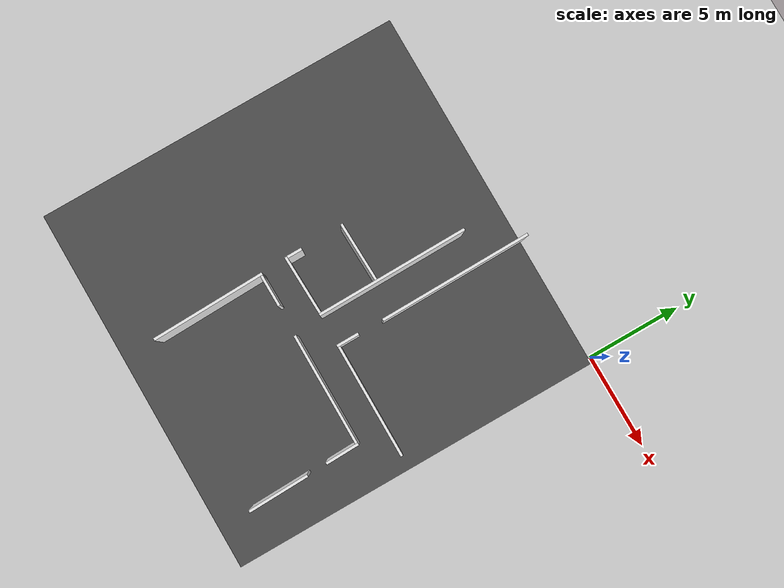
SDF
<sdf version="1.6">
 <world name="default">
  <model name="ground_plane">
   <static>1</static>
   <link name="link">
    <collision name="collision">
     <geometry><plane><normal>0 0 1</normal><size>100 100</size></plane></geometry>
     <surface><friction><ode><mu>100</mu><mu2>50</mu2></ode></friction></surface>
    </collision>
    <visual name="visual">
     <cast_shadows>0</cast_shadows>
     <geometry><plane><normal>0 0 1</normal><size>100 100</size></plane></geometry>
     <material>
      <script><uri>file://media/materials/scripts/gazebo.material</uri><name>Gazebo/Grey</name></script>
     </material>
    </visual>
    <velocity_decay><linear>0</linear><angular>0</angular></velocity_decay>
   </link>
  </model>
  <model name="asphalt_plane">
   <static>1</static>
   <link name="link">
    <collision name="collision"><geometry><box><size>20 20 0.1</size></box></geometry></collision>
    <visual name="visual">
     <cast_shadows>0</cast_shadows>
     <geometry><box><size>20 20 0.1</size></box></geometry>
     <material>
      <script>
       <uri>model://asphalt_plane/materials/scripts</uri>
       <uri>model://asphalt_plane/materials/textures</uri>
       <name>vrc/asphalt</name>
      </script>
     </material>
    </visual>
   </link>
   <pose>-9.73878 -10.1135 0 0 -0 0</pose>
  </model>
  <model name="white_wall2_clone_clone">
   <link name="link">
    <inertial>
     <mass>1</mass>
     <inertia>
      <ixx>0.166667</ixx>
      <ixy>0</ixy>
      <ixz>0</ixz>
      <iyy>0.166667</iyy>
      <iyz>0</iyz>
      <izz>0.166667</izz>
     </inertia>
    </inertial>
    <visual name="visual">
     <geometry><box><size>3.22688 0.139088 2.78993</size></box></geometry>
     <material>
      <script><name>Gazebo/White</name><uri>file://media/materials/scripts/gazebo.material</uri></script>
      <shader type="vertex"><normal_map>__default__</normal_map></shader>
      <ambient>1 1 1 1</ambient>
      <diffuse>1 1 1 1</diffuse>
      <specular>0 0 0 1</specular>
      <emissive>0 0 0 1</emissive>
     </material>
    </visual>
    <collision name="collision">
     <geometry><box><size>3.22688 0.139088 2.78993</size></box></geometry>
     <surface>
      <friction>
       <ode><mu>1</mu><mu2>1</mu2><fdir1>0 0 0</fdir1><slip1>0</slip1><slip2>0</slip2></ode>
       <torsional>
        <coefficient>1</coefficient>
        <patch_radius>0</patch_radius>
        <surface_radius>0</surface_radius>
        <use_patch_radius>1</use_patch_radius>
        <ode><slip>0</slip></ode>
       </torsional>
      </friction>
      <bounce><restitution_coefficient>0</restitution_coefficient><threshold>1e+06</threshold></bounce>
      <contact>
       <collide_without_contact>0</collide_without_contact>
       <collide_without_contact_bitmask>1</collide_without_contact_bitmask>
       <collide_bitmask>1</collide_bitmask>
       <ode>
        <soft_cfm>0</soft_cfm>
        <soft_erp>0.2</soft_erp>
        <kp>1e+13</kp>
        <kd>1</kd>
        <max_vel>0.01</max_vel>
        <min_depth>0</min_depth>
       </ode>
       <bullet>
        <split_impulse>1</split_impulse>
        <split_impulse_penetration_threshold>-0.01</split_impulse_penetration_threshold>
        <soft_cfm>0</soft_cfm>
        <soft_erp>0.2</soft_erp>
        <kp>1e+13</kp>
        <kd>1</kd>
       </bullet>
      </contact>
     </surface>
    </collision>
   </link>
   <static>1</static>
   <pose>-2.06384 -16.4395 1.43995 4e-06 1e-06 1.59932</pose>
  </model>
  <model name="white_wall3_clone_clone">
   <link name="link">
    <inertial>
     <mass>1</mass>
     <inertia>
      <ixx>0.166667</ixx>
      <ixy>0</ixy>
      <ixz>0</ixz>
      <iyy>0.166667</iyy>
      <iyz>0</iyz>
      <izz>0.166667</izz>
     </inertia>
    </inertial>
    <visual name="visual">
     <geometry><box><size>1.77743 0.139088 2.78993</size></box></geometry>
     <material>
      <script><name>Gazebo/White</name><uri>file://media/materials/scripts/gazebo.material</uri></script>
      <shader type="vertex"><normal_map>__default__</normal_map></shader>
      <ambient>1 1 1 1</ambient>
      <diffuse>1 1 1 1</diffuse>
      <specular>0 0 0 1</specular>
      <emissive>0 0 0 1</emissive>
     </material>
    </visual>
    <collision name="collision">
     <geometry><box><size>1.77743 0.139088 2.78993</size></box></geometry>
     <surface>
      <friction>
       <ode><mu>1</mu><mu2>1</mu2><fdir1>0 0 0</fdir1><slip1>0</slip1><slip2>0</slip2></ode>
       <torsional>
        <coefficient>1</coefficient>
        <patch_radius>0</patch_radius>
        <surface_radius>0</surface_radius>
        <use_patch_radius>1</use_patch_radius>
        <ode><slip>0</slip></ode>
       </torsional>
      </friction>
      <bounce><restitution_coefficient>0</restitution_coefficient><threshold>1e+06</threshold></bounce>
      <contact>
       <collide_without_contact>0</collide_without_contact>
       <collide_without_contact_bitmask>1</collide_without_contact_bitmask>
       <collide_bitmask>1</collide_bitmask>
       <ode>
        <soft_cfm>0</soft_cfm>
        <soft_erp>0.2</soft_erp>
        <kp>1e+13</kp>
        <kd>1</kd>
        <max_vel>0.01</max_vel>
        <min_depth>0</min_depth>
       </ode>
       <bullet>
        <split_impulse>1</split_impulse>
        <split_impulse_penetration_threshold>-0.01</split_impulse_penetration_threshold>
        <soft_cfm>0</soft_cfm>
        <soft_erp>0.2</soft_erp>
        <kp>1e+13</kp>
        <kd>1</kd>
       </bullet>
      </contact>
     </surface>
    </collision>
   </link>
   <static>1</static>
   <pose>-2.17837 -12.9037 1.43995 4e-06 1e-06 1.59932</pose>
  </model>
  <model name="white_wall6_clone">
   <link name="link">
    <inertial>
     <mass>1</mass>
     <inertia>
      <ixx>0.166667</ixx>
      <ixy>0</ixy>
      <ixz>0</ixz>
      <iyy>0.166667</iyy>
      <iyz>0</iyz>
      <izz>0.166667</izz>
     </inertia>
    </inertial>
    <visual name="visual">
     <geometry><box><size>6.01508 0.139088 2.78993</size></box></geometry>
     <material>
      <script><name>Gazebo/White</name><uri>file://media/materials/scripts/gazebo.material</uri></script>
      <shader type="vertex"><normal_map>__default__</normal_map></shader>
      <ambient>1 1 1 1</ambient>
      <diffuse>1 1 1 1</diffuse>
      <specular>0 0 0 1</specular>
      <emissive>0 0 0 1</emissive>
     </material>
    </visual>
    <collision name="collision">
     <geometry><box><size>6.01508 0.139088 2.78993</size></box></geometry>
     <surface>
      <friction>
       <ode><mu>1</mu><mu2>1</mu2><fdir1>0 0 0</fdir1><slip1>0</slip1><slip2>0</slip2></ode>
       <torsional>
        <coefficient>1</coefficient>
        <patch_radius>0</patch_radius>
        <surface_radius>0</surface_radius>
        <use_patch_radius>1</use_patch_radius>
        <ode><slip>0</slip></ode>
       </torsional>
      </friction>
      <bounce><restitution_coefficient>0</restitution_coefficient><threshold>1e+06</threshold></bounce>
      <contact>
       <collide_without_contact>0</collide_without_contact>
       <collide_without_contact_bitmask>1</collide_without_contact_bitmask>
       <collide_bitmask>1</collide_bitmask>
       <ode>
        <soft_cfm>0</soft_cfm>
        <soft_erp>0.2</soft_erp>
        <kp>1e+13</kp>
        <kd>1</kd>
        <max_vel>0.01</max_vel>
        <min_depth>0</min_depth>
       </ode>
       <bullet>
        <split_impulse>1</split_impulse>
        <split_impulse_penetration_threshold>-0.01</split_impulse_penetration_threshold>
        <soft_cfm>0</soft_cfm>
        <soft_erp>0.2</soft_erp>
        <kp>1e+13</kp>
        <kd>1</kd>
       </bullet>
      </contact>
     </surface>
    </collision>
   </link>
   <static>1</static>
   <pose>-11.3944 -14.9604 1.43998 4e-06 1e-06 1.59932</pose>
  </model>
  <model name="white_wall3_clone_clone_0">
   <link name="link">
    <inertial>
     <mass>1</mass>
     <inertia>
      <ixx>0.166667</ixx>
      <ixy>0</ixy>
      <ixz>0</ixz>
      <iyy>0.166667</iyy>
      <iyz>0</iyz>
      <izz>0.166667</izz>
     </inertia>
    </inertial>
    <visual name="visual">
     <geometry><box><size>1.77743 0.139088 2.78993</size></box></geometry>
     <material>
      <script><name>Gazebo/White</name><uri>file://media/materials/scripts/gazebo.material</uri></script>
      <shader type="vertex"><normal_map>__default__</normal_map></shader>
      <ambient>1 1 1 1</ambient>
      <diffuse>1 1 1 1</diffuse>
      <specular>0 0 0 1</specular>
      <emissive>0 0 0 1</emissive>
     </material>
    </visual>
    <collision name="collision">
     <geometry><box><size>1.77743 0.139088 2.78993</size></box></geometry>
     <surface>
      <friction>
       <ode><mu>1</mu><mu2>1</mu2><fdir1>0 0 0</fdir1><slip1>0</slip1><slip2>0</slip2></ode>
       <torsional>
        <coefficient>1</coefficient>
        <patch_radius>0</patch_radius>
        <surface_radius>0</surface_radius>
        <use_patch_radius>1</use_patch_radius>
        <ode><slip>0</slip></ode>
       </torsional>
      </friction>
      <bounce><restitution_coefficient>0</restitution_coefficient><threshold>1e+06</threshold></bounce>
      <contact>
       <collide_without_contact>0</collide_without_contact>
       <collide_without_contact_bitmask>1</collide_without_contact_bitmask>
       <collide_bitmask>1</collide_bitmask>
       <ode>
        <soft_cfm>0</soft_cfm>
        <soft_erp>0.2</soft_erp>
        <kp>1e+13</kp>
        <kd>1</kd>
        <max_vel>0.01</max_vel>
        <min_depth>0</min_depth>
       </ode>
       <bullet>
        <split_impulse>1</split_impulse>
        <split_impulse_penetration_threshold>-0.01</split_impulse_penetration_threshold>
        <soft_cfm>0</soft_cfm>
        <soft_erp>0.2</soft_erp>
        <kp>1e+13</kp>
        <kd>1</kd>
       </bullet>
      </contact>
     </surface>
    </collision>
   </link>
   <static>1</static>
   <pose>-10.627 -12.0267 1.43995 -1e-06 4e-06 0.011343</pose>
  </model>
  <model name="white_wall11">
   <link name="link">
    <inertial>
     <mass>1</mass>
     <inertia>
      <ixx>0.166667</ixx>
      <ixy>0</ixy>
      <ixz>0</ixz>
      <iyy>0.166667</iyy>
      <iyz>0</iyz>
      <izz>0.166667</izz>
     </inertia>
    </inertial>
    <visual name="visual">
     <geometry><box><size>6.01508 0.139088 2.78993</size></box></geometry>
     <material>
      <script><name>Gazebo/White</name><uri>file://media/materials/scripts/gazebo.material</uri></script>
      <shader type="vertex"><normal_map>__default__</normal_map></shader>
      <ambient>1 1 1 1</ambient>
      <diffuse>1 1 1 1</diffuse>
      <specular>0 0 0 1</specular>
      <emissive>0 0 0 1</emissive>
     </material>
    </visual>
    <collision name="collision">
     <geometry><box><size>6.01508 0.139088 2.78993</size></box></geometry>
     <surface>
      <friction>
       <ode><mu>1</mu><mu2>1</mu2><fdir1>0 0 0</fdir1><slip1>0</slip1><slip2>0</slip2></ode>
       <torsional>
        <coefficient>1</coefficient>
        <patch_radius>0</patch_radius>
        <surface_radius>0</surface_radius>
        <use_patch_radius>1</use_patch_radius>
        <ode><slip>0</slip></ode>
       </torsional>
      </friction>
      <bounce><restitution_coefficient>0</restitution_coefficient><threshold>1e+06</threshold></bounce>
      <contact>
       <collide_without_contact>0</collide_without_contact>
       <collide_without_contact_bitmask>1</collide_without_contact_bitmask>
       <collide_bitmask>1</collide_bitmask>
       <ode>
        <soft_cfm>0</soft_cfm>
        <soft_erp>0.2</soft_erp>
        <kp>1e+13</kp>
        <kd>1</kd>
        <max_vel>0.01</max_vel>
        <min_depth>0</min_depth>
       </ode>
       <bullet>
        <split_impulse>1</split_impulse>
        <split_impulse_penetration_threshold>-0.01</split_impulse_penetration_threshold>
        <soft_cfm>0</soft_cfm>
        <soft_erp>0.2</soft_erp>
        <kp>1e+13</kp>
        <kd>1</kd>
       </bullet>
      </contact>
     </surface>
    </collision>
   </link>
   <static>1</static>
   <pose>-5.13347 -12.0805 1.43992 -1e-06 4e-06 -1.6e-05</pose>
  </model>
  <model name="white_wall2_clone_clone_clone_clone">
   <link name="link">
    <inertial>
     <mass>1</mass>
     <inertia>
      <ixx>0.166667</ixx>
      <ixy>0</ixy>
      <ixz>0</ixz>
      <iyy>0.166667</iyy>
      <iyz>0</iyz>
      <izz>0.166667</izz>
     </inertia>
    </inertial>
    <visual name="visual">
     <geometry><box><size>3.22688 0.139088 2.78993</size></box></geometry>
     <material>
      <script><name>Gazebo/White</name><uri>file://media/materials/scripts/gazebo.material</uri></script>
      <shader type="vertex"><normal_map>__default__</normal_map></shader>
      <ambient>1 1 1 1</ambient>
      <diffuse>1 1 1 1</diffuse>
      <specular>0 0 0 1</specular>
      <emissive>0 0 0 1</emissive>
     </material>
    </visual>
    <collision name="collision">
     <geometry><box><size>3.22688 0.139088 2.78993</size></box></geometry>
     <surface>
      <friction>
       <ode><mu>1</mu><mu2>1</mu2><fdir1>0 0 0</fdir1><slip1>0</slip1><slip2>0</slip2></ode>
       <torsional>
        <coefficient>1</coefficient>
        <patch_radius>0</patch_radius>
        <surface_radius>0</surface_radius>
        <use_patch_radius>1</use_patch_radius>
        <ode><slip>0</slip></ode>
       </torsional>
      </friction>
      <bounce><restitution_coefficient>0</restitution_coefficient><threshold>1e+06</threshold></bounce>
      <contact>
       <collide_without_contact>0</collide_without_contact>
       <collide_without_contact_bitmask>1</collide_without_contact_bitmask>
       <collide_bitmask>1</collide_bitmask>
       <ode>
        <soft_cfm>0</soft_cfm>
        <soft_erp>0.2</soft_erp>
        <kp>1e+13</kp>
        <kd>1</kd>
        <max_vel>0.01</max_vel>
        <min_depth>0</min_depth>
       </ode>
       <bullet>
        <split_impulse>1</split_impulse>
        <split_impulse_penetration_threshold>-0.01</split_impulse_penetration_threshold>
        <soft_cfm>0</soft_cfm>
        <soft_erp>0.2</soft_erp>
        <kp>1e+13</kp>
        <kd>1</kd>
       </bullet>
      </contact>
     </surface>
    </collision>
   </link>
   <static>1</static>
   <pose>-9.99801 -10.5535 1.43995 -1e-06 4e-06 0.031295</pose>
  </model>
  <model name="white_wall2_clone_clone_clone_clone_clone">
   <link name="link">
    <inertial>
     <mass>1</mass>
     <inertia>
      <ixx>0.166667</ixx>
      <ixy>0</ixy>
      <ixz>0</ixz>
      <iyy>0.166667</iyy>
      <iyz>0</iyz>
      <izz>0.166667</izz>
     </inertia>
    </inertial>
    <visual name="visual">
     <geometry><box><size>3.22688 0.139088 2.78993</size></box></geometry>
     <material>
      <script><name>Gazebo/White</name><uri>file://media/materials/scripts/gazebo.material</uri></script>
      <shader type="vertex"><normal_map>__default__</normal_map></shader>
      <ambient>1 1 1 1</ambient>
      <diffuse>1 1 1 1</diffuse>
      <specular>0 0 0 1</specular>
      <emissive>0 0 0 1</emissive>
     </material>
    </visual>
    <collision name="collision">
     <geometry><box><size>3.22688 0.139088 2.78993</size></box></geometry>
     <surface>
      <friction>
       <ode><mu>1</mu><mu2>1</mu2><fdir1>0 0 0</fdir1><slip1>0</slip1><slip2>0</slip2></ode>
       <torsional>
        <coefficient>1</coefficient>
        <patch_radius>0</patch_radius>
        <surface_radius>0</surface_radius>
        <use_patch_radius>1</use_patch_radius>
        <ode><slip>0</slip></ode>
       </torsional>
      </friction>
      <bounce><restitution_coefficient>0</restitution_coefficient><threshold>1e+06</threshold></bounce>
      <contact>
       <collide_without_contact>0</collide_without_contact>
       <collide_without_contact_bitmask>1</collide_without_contact_bitmask>
       <collide_bitmask>1</collide_bitmask>
       <ode>
        <soft_cfm>0</soft_cfm>
        <soft_erp>0.2</soft_erp>
        <kp>1e+13</kp>
        <kd>1</kd>
        <max_vel>0.01</max_vel>
        <min_depth>0</min_depth>
       </ode>
       <bullet>
        <split_impulse>1</split_impulse>
        <split_impulse_penetration_threshold>-0.01</split_impulse_penetration_threshold>
        <soft_cfm>0</soft_cfm>
        <soft_erp>0.2</soft_erp>
        <kp>1e+13</kp>
        <kd>1</kd>
       </bullet>
      </contact>
     </surface>
    </collision>
   </link>
   <static>1</static>
   <pose>-10.0397 -7.45646 1.43995 -1e-06 4e-06 0.031295</pose>
  </model>
  <model name="white_wall20">
   <link name="link">
    <inertial>
     <mass>1</mass>
     <inertia>
      <ixx>0.166667</ixx>
      <ixy>0</ixy>
      <ixz>0</ixz>
      <iyy>0.166667</iyy>
      <iyz>0</iyz>
      <izz>0.166667</izz>
     </inertia>
    </inertial>
    <visual name="visual">
     <geometry><box><size>8.05225 0.139088 2.78993</size></box></geometry>
     <material>
      <script><name>Gazebo/White</name><uri>file://media/materials/scripts/gazebo.material</uri></script>
      <shader type="vertex"><normal_map>__default__</normal_map></shader>
      <ambient>1 1 1 1</ambient>
      <diffuse>1 1 1 1</diffuse>
      <specular>0 0 0 1</specular>
      <emissive>0 0 0 1</emissive>
     </material>
    </visual>
    <collision name="collision">
     <geometry><box><size>8.05225 0.139088 2.78993</size></box></geometry>
     <surface>
      <friction>
       <ode><mu>1</mu><mu2>1</mu2><fdir1>0 0 0</fdir1><slip1>0</slip1><slip2>0</slip2></ode>
       <torsional>
        <coefficient>1</coefficient>
        <patch_radius>0</patch_radius>
        <surface_radius>0</surface_radius>
        <use_patch_radius>1</use_patch_radius>
        <ode><slip>0</slip></ode>
       </torsional>
      </friction>
      <bounce><restitution_coefficient>0</restitution_coefficient><threshold>1e+06</threshold></bounce>
      <contact>
       <collide_without_contact>0</collide_without_contact>
       <collide_without_contact_bitmask>1</collide_without_contact_bitmask>
       <collide_bitmask>1</collide_bitmask>
       <ode>
        <soft_cfm>0</soft_cfm>
        <soft_erp>0.2</soft_erp>
        <kp>1e+13</kp>
        <kd>1</kd>
        <max_vel>0.01</max_vel>
        <min_depth>0</min_depth>
       </ode>
       <bullet>
        <split_impulse>1</split_impulse>
        <split_impulse_penetration_threshold>-0.01</split_impulse_penetration_threshold>
        <soft_cfm>0</soft_cfm>
        <soft_erp>0.2</soft_erp>
        <kp>1e+13</kp>
        <kd>1</kd>
       </bullet>
      </contact>
     </surface>
    </collision>
   </link>
   <static>1</static>
   <pose>-8.45525 -6.55408 1.43995 4e-06 1e-06 1.58267</pose>
  </model>
  <model name="white_wall20_clone">
   <link name="link">
    <inertial>
     <mass>1</mass>
     <inertia>
      <ixx>0.166667</ixx>
      <ixy>0</ixy>
      <ixz>0</ixz>
      <iyy>0.166667</iyy>
      <iyz>0</iyz>
      <izz>0.166667</izz>
     </inertia>
    </inertial>
    <visual name="visual">
     <geometry><box><size>8.05225 0.139088 2.78993</size></box></geometry>
     <material>
      <script><name>Gazebo/White</name><uri>file://media/materials/scripts/gazebo.material</uri></script>
      <shader type="vertex"><normal_map>__default__</normal_map></shader>
      <ambient>1 1 1 1</ambient>
      <diffuse>1 1 1 1</diffuse>
      <specular>0 0 0 1</specular>
      <emissive>0 0 0 1</emissive>
     </material>
    </visual>
    <collision name="collision">
     <geometry><box><size>8.05225 0.139088 2.78993</size></box></geometry>
     <surface>
      <friction>
       <ode><mu>1</mu><mu2>1</mu2><fdir1>0 0 0</fdir1><slip1>0</slip1><slip2>0</slip2></ode>
       <torsional>
        <coefficient>1</coefficient>
        <patch_radius>0</patch_radius>
        <surface_radius>0</surface_radius>
        <use_patch_radius>1</use_patch_radius>
        <ode><slip>0</slip></ode>
       </torsional>
      </friction>
      <bounce><restitution_coefficient>0</restitution_coefficient><threshold>1e+06</threshold></bounce>
      <contact>
       <collide_without_contact>0</collide_without_contact>
       <collide_without_contact_bitmask>1</collide_without_contact_bitmask>
       <collide_bitmask>1</collide_bitmask>
       <ode>
        <soft_cfm>0</soft_cfm>
        <soft_erp>0.2</soft_erp>
        <kp>1e+13</kp>
        <kd>1</kd>
        <max_vel>0.01</max_vel>
        <min_depth>0</min_depth>
       </ode>
       <bullet>
        <split_impulse>1</split_impulse>
        <split_impulse_penetration_threshold>-0.01</split_impulse_penetration_threshold>
        <soft_cfm>0</soft_cfm>
        <soft_erp>0.2</soft_erp>
        <kp>1e+13</kp>
        <kd>1</kd>
       </bullet>
      </contact>
     </surface>
    </collision>
   </link>
   <static>1</static>
   <pose>-6.73509 -4.06271 1.43995 4e-06 1e-06 1.58267</pose>
  </model>
  <model name="white_wall3_clone_clone_0_clone_clone_0_clone_clone_clone">
   <link name="link">
    <inertial>
     <mass>1</mass>
     <inertia>
      <ixx>0.166667</ixx>
      <ixy>0</ixy>
      <ixz>0</ixz>
      <iyy>0.166667</iyy>
      <iyz>0</iyz>
      <izz>0.166667</izz>
     </inertia>
    </inertial>
    <visual name="visual">
     <geometry><box><size>1.18951 0.139088 2.78993</size></box></geometry>
     <material>
      <script><name>Gazebo/White</name><uri>file://media/materials/scripts/gazebo.material</uri></script>
      <shader type="vertex"><normal_map>__default__</normal_map></shader>
      <ambient>1 1 1 1</ambient>
      <diffuse>1 1 1 1</diffuse>
      <specular>0 0 0 1</specular>
      <emissive>0 0 0 1</emissive>
     </material>
    </visual>
    <collision name="collision">
     <geometry><box><size>1.18951 0.139088 2.78993</size></box></geometry>
     <surface>
      <friction>
       <ode><mu>1</mu><mu2>1</mu2><fdir1>0 0 0</fdir1><slip1>0</slip1><slip2>0</slip2></ode>
       <torsional>
        <coefficient>1</coefficient>
        <patch_radius>0</patch_radius>
        <surface_radius>0</surface_radius>
        <use_patch_radius>1</use_patch_radius>
        <ode><slip>0</slip></ode>
       </torsional>
      </friction>
      <bounce><restitution_coefficient>0</restitution_coefficient><threshold>1e+06</threshold></bounce>
      <contact>
       <collide_without_contact>0</collide_without_contact>
       <collide_without_contact_bitmask>1</collide_without_contact_bitmask>
       <collide_bitmask>1</collide_bitmask>
       <ode>
        <soft_cfm>0</soft_cfm>
        <soft_erp>0.2</soft_erp>
        <kp>1e+13</kp>
        <kd>1</kd>
        <max_vel>0.01</max_vel>
        <min_depth>0</min_depth>
       </ode>
       <bullet>
        <split_impulse>1</split_impulse>
        <split_impulse_penetration_threshold>-0.01</split_impulse_penetration_threshold>
        <soft_cfm>0</soft_cfm>
        <soft_erp>0.2</soft_erp>
        <kp>1e+13</kp>
        <kd>1</kd>
       </bullet>
      </contact>
     </surface>
    </collision>
   </link>
   <static>1</static>
   <pose>-6.70487 -10.0029 1.43995 4e-06 1e-06 1.57847</pose>
  </model>
  <model name="white_wall11_clone">
   <link name="link">
    <inertial>
     <mass>1</mass>
     <inertia>
      <ixx>0.166667</ixx>
      <ixy>0</ixy>
      <ixz>0</ixz>
      <iyy>0.166667</iyy>
      <iyz>0</iyz>
      <izz>0.166667</izz>
     </inertia>
    </inertial>
    <visual name="visual">
     <geometry><box><size>6.01508 0.139088 2.78993</size></box></geometry>
     <material>
      <script><name>Gazebo/White</name><uri>file://media/materials/scripts/gazebo.material</uri></script>
      <shader type="vertex"><normal_map>__default__</normal_map></shader>
      <ambient>1 1 1 1</ambient>
      <diffuse>1 1 1 1</diffuse>
      <specular>0 0 0 1</specular>
      <emissive>0 0 0 1</emissive>
     </material>
    </visual>
    <collision name="collision">
     <geometry><box><size>6.01508 0.139088 2.78993</size></box></geometry>
     <surface>
      <friction>
       <ode><mu>1</mu><mu2>1</mu2><fdir1>0 0 0</fdir1><slip1>0</slip1><slip2>0</slip2></ode>
       <torsional>
        <coefficient>1</coefficient>
        <patch_radius>0</patch_radius>
        <surface_radius>0</surface_radius>
        <use_patch_radius>1</use_patch_radius>
        <ode><slip>0</slip></ode>
       </torsional>
      </friction>
      <bounce><restitution_coefficient>0</restitution_coefficient><threshold>1e+06</threshold></bounce>
      <contact>
       <collide_without_contact>0</collide_without_contact>
       <collide_without_contact_bitmask>1</collide_without_contact_bitmask>
       <collide_bitmask>1</collide_bitmask>
       <ode>
        <soft_cfm>0</soft_cfm>
        <soft_erp>0.2</soft_erp>
        <kp>1e+13</kp>
        <kd>1</kd>
        <max_vel>0.01</max_vel>
        <min_depth>0</min_depth>
       </ode>
       <bullet>
        <split_impulse>1</split_impulse>
        <split_impulse_penetration_threshold>-0.01</split_impulse_penetration_threshold>
        <soft_cfm>0</soft_cfm>
        <soft_erp>0.2</soft_erp>
        <kp>1e+13</kp>
        <kd>1</kd>
       </bullet>
      </contact>
     </surface>
    </collision>
   </link>
   <static>1</static>
   <pose>-3.67689 -10.52 1.43992 -1e-06 4e-06 -1.6e-05</pose>
  </model>
  <model name="white_wall28">
   <link name="link">
    <inertial>
     <mass>1</mass>
     <inertia>
      <ixx>0.166667</ixx>
      <ixy>0</ixy>
      <ixz>0</ixz>
      <iyy>0.166667</iyy>
      <iyz>0</iyz>
      <izz>0.166667</izz>
     </inertia>
    </inertial>
    <visual name="visual">
     <geometry><box><size>0.920127 0.139088 2.78993</size></box></geometry>
     <material>
      <script><name>Gazebo/White</name><uri>file://media/materials/scripts/gazebo.material</uri></script>
      <shader type="vertex"><normal_map>__default__</normal_map></shader>
      <ambient>1 1 1 1</ambient>
      <diffuse>1 1 1 1</diffuse>
      <specular>0 0 0 1</specular>
      <emissive>0 0 0 1</emissive>
     </material>
    </visual>
    <collision name="collision">
     <geometry><box><size>0.920127 0.139088 2.78993</size></box></geometry>
     <surface>
      <friction>
       <ode><mu>1</mu><mu2>1</mu2><fdir1>0 0 0</fdir1><slip1>0</slip1><slip2>0</slip2></ode>
       <torsional>
        <coefficient>1</coefficient>
        <patch_radius>0</patch_radius>
        <surface_radius>0</surface_radius>
        <use_patch_radius>1</use_patch_radius>
        <ode><slip>0</slip></ode>
       </torsional>
      </friction>
      <bounce><restitution_coefficient>0</restitution_coefficient><threshold>1e+06</threshold></bounce>
      <contact>
       <collide_without_contact>0</collide_without_contact>
       <collide_without_contact_bitmask>1</collide_without_contact_bitmask>
       <collide_bitmask>1</collide_bitmask>
       <ode>
        <soft_cfm>0</soft_cfm>
        <soft_erp>0.2</soft_erp>
        <kp>1e+13</kp>
        <kd>1</kd>
        <max_vel>0.01</max_vel>
        <min_depth>0</min_depth>
       </ode>
       <bullet>
        <split_impulse>1</split_impulse>
        <split_impulse_penetration_threshold>-0.01</split_impulse_penetration_threshold>
        <soft_cfm>0</soft_cfm>
        <soft_erp>0.2</soft_erp>
        <kp>1e+13</kp>
        <kd>1</kd>
       </bullet>
      </contact>
     </surface>
    </collision>
   </link>
   <static>1</static>
   <pose>-11.5629 -10.1955 1.43995 4e-06 1e-06 1.57847</pose>
  </model>
 </world>
</sdf>
